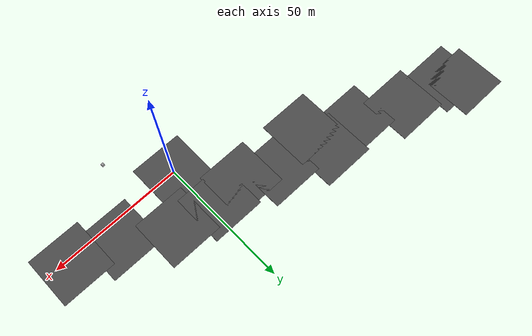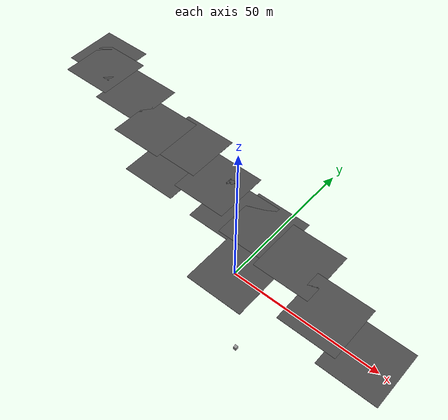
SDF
<sdf version="1.6">
 <world name="timpajdsparse">
  <model name="asphalt_plane">
   <static>1</static>
   <link name="link">
    <collision name="collision"><geometry><box><size>20 20 0.1</size></box></geometry></collision>
    <visual name="visual">
     <cast_shadows>0</cast_shadows>
     <geometry><box><size>20 20 0.1</size></box></geometry>
     <material>
      <script>
       <uri>model://asphalt_plane/materials/scripts</uri>
       <uri>model://asphalt_plane/materials/textures</uri>
       <name>vrc/asphalt</name>
      </script>
     </material>
    </visual>
   </link>
  </model>
  <physics name="default_physics" default="0" type="ode">
   <ode>
    <solver>
     <type>quick</type>
     <iters>10</iters>
     <sor>1.3</sor>
     <use_dynamic_moi_rescaling>0</use_dynamic_moi_rescaling>
    </solver>
    <constraints>
     <cfm>0</cfm>
     <erp>0.2</erp>
     <contact_max_correcting_vel>100</contact_max_correcting_vel>
     <contact_surface_layer>0.001</contact_surface_layer>
    </constraints>
   </ode>
   <max_step_size>0.002</max_step_size>
   <real_time_factor>1</real_time_factor>
   <real_time_update_rate>500</real_time_update_rate>
  </physics>
  <scene><ambient>0.4 0.4 0.4 1</ambient><background>0.7 0.7 0.7 1</background><shadows>1</shadows></scene>
  <spherical_coordinates>
   <surface_model>EARTH_WGS84</surface_model>
   <latitude_deg>0</latitude_deg>
   <longitude_deg>0</longitude_deg>
   <elevation>0</elevation>
   <heading_deg>0</heading_deg>
  </spherical_coordinates>
  <model name="asphalt_plane_0">
   <static>1</static>
   <link name="link">
    <collision name="collision"><geometry><box><size>20 20 0.1</size></box></geometry></collision>
    <visual name="visual">
     <cast_shadows>0</cast_shadows>
     <geometry><box><size>20 20 0.1</size></box></geometry>
     <material>
      <script>
       <uri>model://asphalt_plane/materials/scripts</uri>
       <uri>model://asphalt_plane/materials/textures</uri>
       <name>vrc/asphalt</name>
      </script>
     </material>
    </visual>
   </link>
   <pose>-44 19 0 0 -0 0</pose>
  </model>
  <model name="asphalt_plane_0_0">
   <static>1</static>
   <link name="link">
    <collision name="collision"><geometry><box><size>20 20 0.1</size></box></geometry></collision>
    <visual name="visual">
     <cast_shadows>0</cast_shadows>
     <geometry><box><size>20 20 0.1</size></box></geometry>
     <material>
      <script>
       <uri>model://asphalt_plane/materials/scripts</uri>
       <uri>model://asphalt_plane/materials/textures</uri>
       <name>vrc/asphalt</name>
      </script>
     </material>
    </visual>
   </link>
   <pose>-96 40.5064 0 0 -0 0</pose>
  </model>
  <model name="asphalt_plane_1">
   <static>1</static>
   <link name="link">
    <collision name="collision"><geometry><box><size>20 20 0.1</size></box></geometry></collision>
    <visual name="visual">
     <cast_shadows>0</cast_shadows>
     <geometry><box><size>20 20 0.1</size></box></geometry>
     <material>
      <script>
       <uri>model://asphalt_plane/materials/scripts</uri>
       <uri>model://asphalt_plane/materials/textures</uri>
       <name>vrc/asphalt</name>
      </script>
     </material>
    </visual>
   </link>
   <pose>-100 46 0 0 -0 0</pose>
  </model>
  <model name="asphalt_plane_2">
   <static>1</static>
   <link name="link">
    <collision name="collision"><geometry><box><size>20 20 0.1</size></box></geometry></collision>
    <visual name="visual">
     <cast_shadows>0</cast_shadows>
     <geometry><box><size>20 20 0.1</size></box></geometry>
     <material>
      <script>
       <uri>model://asphalt_plane/materials/scripts</uri>
       <uri>model://asphalt_plane/materials/textures</uri>
       <name>vrc/asphalt</name>
      </script>
     </material>
    </visual>
   </link>
   <pose>-4 19 0 0 -0 0</pose>
  </model>
  <model name="asphalt_plane_3">
   <static>1</static>
   <link name="link">
    <collision name="collision"><geometry><box><size>20 20 0.1</size></box></geometry></collision>
    <visual name="visual">
     <cast_shadows>0</cast_shadows>
     <geometry><box><size>20 20 0.1</size></box></geometry>
     <material>
      <script>
       <uri>model://asphalt_plane/materials/scripts</uri>
       <uri>model://asphalt_plane/materials/textures</uri>
       <name>vrc/asphalt</name>
      </script>
     </material>
    </visual>
   </link>
   <pose>28.4839 6 0 0 -0 0</pose>
  </model>
  <model name="unit_box_1">
   <pose>16 -19 0.5 0 -0 0</pose>
   <link name="link">
    <inertial>
     <mass>1</mass>
     <inertia>
      <ixx>0.166667</ixx>
      <ixy>0</ixy>
      <ixz>0</ixz>
      <iyy>0.166667</iyy>
      <iyz>0</iyz>
      <izz>0.166667</izz>
     </inertia>
    </inertial>
    <collision name="collision"><geometry><box><size>1 1 1</size></box></geometry></collision>
    <visual name="visual">
     <geometry><box><size>1 1 1</size></box></geometry>
     <material>
      <script><name>Gazebo/Grey</name><uri>file://media/materials/scripts/gazebo.material</uri></script>
     </material>
    </visual>
   </link>
  </model>
  <model name="asphalt_plane_6">
   <static>1</static>
   <link name="link">
    <collision name="collision"><geometry><box><size>20 20 0.1</size></box></geometry></collision>
    <visual name="visual">
     <cast_shadows>0</cast_shadows>
     <geometry><box><size>20 20 0.1</size></box></geometry>
     <material>
      <script>
       <uri>model://asphalt_plane/materials/scripts</uri>
       <uri>model://asphalt_plane/materials/textures</uri>
       <name>vrc/asphalt</name>
      </script>
     </material>
    </visual>
   </link>
   <pose>-77 37 0 0 -0 0</pose>
  </model>
  <model name="asphalt_plane_0_1">
   <static>1</static>
   <link name="link">
    <collision name="collision"><geometry><box><size>20 20 0.1</size></box></geometry></collision>
    <visual name="visual">
     <cast_shadows>0</cast_shadows>
     <geometry><box><size>20 20 0.1</size></box></geometry>
     <material>
      <script>
       <uri>model://asphalt_plane/materials/scripts</uri>
       <uri>model://asphalt_plane/materials/textures</uri>
       <name>vrc/asphalt</name>
      </script>
     </material>
    </visual>
   </link>
   <pose>-60 29.5676 0 0 -0 0</pose>
  </model>
  <model name="asphalt_plane_1_0">
   <static>1</static>
   <link name="link">
    <collision name="collision"><geometry><box><size>20 20 0.1</size></box></geometry></collision>
    <visual name="visual">
     <cast_shadows>0</cast_shadows>
     <geometry><box><size>20 20 0.1</size></box></geometry>
     <material>
      <script>
       <uri>model://asphalt_plane/materials/scripts</uri>
       <uri>model://asphalt_plane/materials/textures</uri>
       <name>vrc/asphalt</name>
      </script>
     </material>
    </visual>
   </link>
   <pose>-27 24 0 0 -0 0</pose>
  </model>
  <model name="asphalt_plane_2_0">
   <static>1</static>
   <link name="link">
    <collision name="collision"><geometry><box><size>20 20 0.1</size></box></geometry></collision>
    <visual name="visual">
     <cast_shadows>0</cast_shadows>
     <geometry><box><size>20 20 0.1</size></box></geometry>
     <material>
      <script>
       <uri>model://asphalt_plane/materials/scripts</uri>
       <uri>model://asphalt_plane/materials/textures</uri>
       <name>vrc/asphalt</name>
      </script>
     </material>
    </visual>
   </link>
   <pose>-45 31 0 0 -0 0</pose>
  </model>
  <model name="asphalt_plane_3_0">
   <static>1</static>
   <link name="link">
    <collision name="collision"><geometry><box><size>20 20 0.1</size></box></geometry></collision>
    <visual name="visual">
     <cast_shadows>0</cast_shadows>
     <geometry><box><size>20 20 0.1</size></box></geometry>
     <material>
      <script>
       <uri>model://asphalt_plane/materials/scripts</uri>
       <uri>model://asphalt_plane/materials/textures</uri>
       <name>vrc/asphalt</name>
      </script>
     </material>
    </visual>
   </link>
   <pose>-15 18 0 0 -0 0</pose>
  </model>
  <model name="asphalt_plane_4_0">
   <static>1</static>
   <link name="link">
    <collision name="collision"><geometry><box><size>20 20 0.1</size></box></geometry></collision>
    <visual name="visual">
     <cast_shadows>0</cast_shadows>
     <geometry><box><size>20 20 0.1</size></box></geometry>
     <material>
      <script>
       <uri>model://asphalt_plane/materials/scripts</uri>
       <uri>model://asphalt_plane/materials/textures</uri>
       <name>vrc/asphalt</name>
      </script>
     </material>
    </visual>
   </link>
   <pose>12 16 0 0 -0 0</pose>
  </model>
  <model name="asphalt_plane_5_0">
   <static>1</static>
   <link name="link">
    <collision name="collision"><geometry><box><size>20 20 0.1</size></box></geometry></collision>
    <visual name="visual">
     <cast_shadows>0</cast_shadows>
     <geometry><box><size>20 20 0.1</size></box></geometry>
     <material>
      <script>
       <uri>model://asphalt_plane/materials/scripts</uri>
       <uri>model://asphalt_plane/materials/textures</uri>
       <name>vrc/asphalt</name>
      </script>
     </material>
    </visual>
   </link>
   <pose>45 1.42978 0 0 -0 0</pose>
  </model>
  <gravity>0 0 -9.8066</gravity>
  <magnetic_field>6e-06 2.3e-05 -4.2e-05</magnetic_field>
  <atmosphere type="adiabatic"/>
  <light name="user_directional_light_0" type="directional">
   <pose>-30.1606 0.804868 1 0 -0 0</pose>
   <diffuse>0.5 0.5 0.5 1</diffuse>
   <specular>0.1 0.1 0.1 1</specular>
   <direction>0.1 0.1 -0.9</direction>
   <attenuation>
    <range>20</range>
    <constant>0.5</constant>
    <linear>0.01</linear>
    <quadratic>0.001</quadratic>
   </attenuation>
  </light>
 </world>
</sdf>
